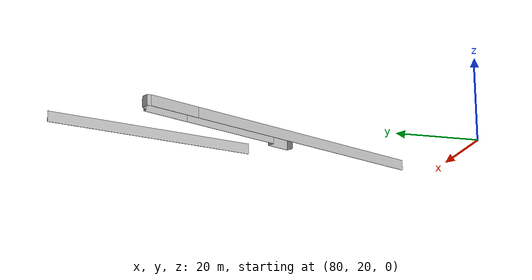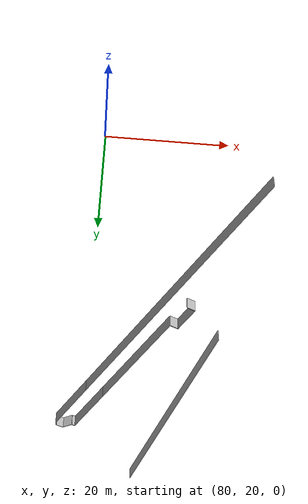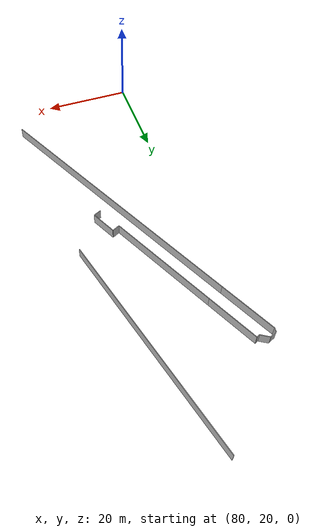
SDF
<?xml version="1.0" ?>
<sdf version="1.6">
  <model name="sps_0301">
    <pose frame="">0 0 0 0 -0 0</pose>
    <static>1</static>
    <self_collide>0</self_collide>
    <allow_auto_disable>0</allow_auto_disable>
    <link name="Wall496">
      <kinematic>0</kinematic>
      <gravity>1</gravity>
      <self_collide>0</self_collide>
      <collision name="collision">
        <geometry>
          <box>
            <size>51.7448 0.15 2.5</size>
          </box>
        </geometry>
        <pose frame="">0 0 0 0 -0 0</pose>
      </collision>
      <visual name="visual">
        <geometry>
          <box>
            <size>51.7448 0.15 2.5</size>
          </box>
        </geometry>
        <pose frame="">0 0 0 0 -0 0</pose>
        <cast_shadows>1</cast_shadows>
        <transparency>0.0</transparency>
      </visual>
      <pose frame="">98.628 92.8931 1.25 0 -0 1.83122</pose>
    </link>
    <link name="Wall1104">
      <kinematic>0</kinematic>
      <gravity>1</gravity>
      <self_collide>0</self_collide>
      <collision name="collision">
        <geometry>
          <box>
            <size>65.0491 0.15 2.5</size>
          </box>
        </geometry>
        <pose frame="">0 0 0 0 -0 0</pose>
      </collision>
      <visual name="visual">
        <geometry>
          <box>
            <size>65.0491 0.15 2.5</size>
          </box>
        </geometry>
        <pose frame="">0 0 0 0 -0 0</pose>
        <cast_shadows>1</cast_shadows>
        <transparency>0.0</transparency>
      </visual>
      <pose frame="">94.6521 57.0061 1.25 0 -0 2.0277</pose>
    </link>
    <link name="Wall1105">
      <kinematic>0</kinematic>
      <gravity>1</gravity>
      <self_collide>0</self_collide>
      <collision name="collision">
        <geometry>
          <box>
            <size>13.2672 0.15 2.5</size>
          </box>
        </geometry>
        <pose frame="">0 0 0 0 -0 0</pose>
      </collision>
      <visual name="visual">
        <geometry>
          <box>
            <size>13.2672 0.15 2.5</size>
          </box>
        </geometry>
        <pose frame="">0 0 0 0 -0 0</pose>
        <cast_shadows>1</cast_shadows>
        <transparency>0.0</transparency>
      </visual>
      <pose frame="">77.3765 92.1474 1.25 0 -0 2.02771</pose>
    </link>
    <link name="Wall1106">
      <kinematic>0</kinematic>
      <gravity>1</gravity>
      <self_collide>0</self_collide>
      <collision name="collision">
        <geometry>
          <box>
            <size>0.839965 0.15 2.5</size>
          </box>
        </geometry>
        <pose frame="">0 0 0 0 -0 0</pose>
      </collision>
      <visual name="visual">
        <geometry>
          <box>
            <size>0.839965 0.15 2.5</size>
          </box>
        </geometry>
        <pose frame="">0 0 0 0 -0 0</pose>
        <cast_shadows>1</cast_shadows>
        <transparency>0.0</transparency>
      </visual>
      <pose frame="">74.4884 98.5187 1.25 0 -0 1.47897</pose>
    </link>
    <link name="Wall1107">
      <kinematic>0</kinematic>
      <gravity>1</gravity>
      <self_collide>0</self_collide>
      <collision name="collision">
        <geometry>
          <box>
            <size>1.64574 0.15 2.5</size>
          </box>
        </geometry>
        <pose frame="">0 0 0 0 -0 0</pose>
      </collision>
      <visual name="visual">
        <geometry>
          <box>
            <size>1.64574 0.15 2.5</size>
          </box>
        </geometry>
        <pose frame="">0 0 0 0 -0 0</pose>
        <cast_shadows>1</cast_shadows>
        <transparency>0.0</transparency>
      </visual>
      <pose frame="">75.2741 99.2816 1.25 0 -0 0.432229</pose>
    </link>
    <link name="Wall1108">
      <kinematic>0</kinematic>
      <gravity>1</gravity>
      <self_collide>0</self_collide>
      <collision name="collision">
        <geometry>
          <box>
            <size>2.1578 0.15 2.5</size>
          </box>
        </geometry>
        <pose frame="">0 0 0 0 -0 0</pose>
      </collision>
      <visual name="visual">
        <geometry>
          <box>
            <size>2.1578 0.15 2.5</size>
          </box>
        </geometry>
        <pose frame="">0 0 0 0 -0 0</pose>
        <cast_shadows>1</cast_shadows>
        <transparency>0.0</transparency>
      </visual>
      <pose frame="">76.9437 99.0668 1.25 0 0 -0.545203</pose>
    </link>
    <link name="Wall1109">
      <kinematic>0</kinematic>
      <gravity>1</gravity>
      <self_collide>0</self_collide>
      <collision name="collision">
        <geometry>
          <box>
            <size>0.754935 0.15 2.5</size>
          </box>
        </geometry>
        <pose frame="">0 0 0 0 -0 0</pose>
      </collision>
      <visual name="visual">
        <geometry>
          <box>
            <size>0.754935 0.15 2.5</size>
          </box>
        </geometry>
        <pose frame="">0 0 0 0 -0 0</pose>
        <cast_shadows>1</cast_shadows>
        <transparency>0.0</transparency>
      </visual>
      <pose frame="">78.2049 98.6739 1.25 0 -0 0.457103</pose>
    </link>
    <link name="Wall1110">
      <kinematic>0</kinematic>
      <gravity>1</gravity>
      <self_collide>0</self_collide>
      <collision name="collision">
        <geometry>
          <box>
            <size>12.1258 0.15 2.5</size>
          </box>
        </geometry>
        <pose frame="">0 0 0 0 -0 0</pose>
      </collision>
      <visual name="visual">
        <geometry>
          <box>
            <size>12.1258 0.15 2.5</size>
          </box>
        </geometry>
        <pose frame="">0 0 0 0 -0 0</pose>
        <cast_shadows>1</cast_shadows>
        <transparency>0.0</transparency>
      </visual>
      <pose frame="">81.2185 93.3995 1.25 0 0 -1.11389</pose>
    </link>
    <link name="Wall1111">
      <kinematic>0</kinematic>
      <gravity>1</gravity>
      <self_collide>0</self_collide>
      <collision name="collision">
        <geometry>
          <box>
            <size>26.0573 0.15 2.5</size>
          </box>
        </geometry>
        <pose frame="">0 0 0 0 -0 0</pose>
      </collision>
      <visual name="visual">
        <geometry>
          <box>
            <size>26.0573 0.15 2.5</size>
          </box>
        </geometry>
        <pose frame="">0 0 0 0 -0 0</pose>
        <cast_shadows>1</cast_shadows>
        <transparency>0.0</transparency>
      </visual>
      <pose frame="">89.6412 76.2663 1.25 0 0 -1.11389</pose>
    </link>
    <link name="Wall1112">
      <kinematic>0</kinematic>
      <gravity>1</gravity>
      <self_collide>0</self_collide>
      <collision name="collision">
        <geometry>
          <box>
            <size>1.80007 0.15 2.5</size>
          </box>
        </geometry>
        <pose frame="">0 0 0 0 -0 0</pose>
      </collision>
      <visual name="visual">
        <geometry>
          <box>
            <size>1.80007 0.15 2.5</size>
          </box>
        </geometry>
        <pose frame="">0 0 0 0 -0 0</pose>
        <cast_shadows>1</cast_shadows>
        <transparency>0.0</transparency>
      </visual>
      <pose frame="">96.197 64.9708 1.25 0 -0 0.456445</pose>
    </link>
    <link name="Wall1113">
      <kinematic>0</kinematic>
      <gravity>1</gravity>
      <self_collide>0</self_collide>
      <collision name="collision">
        <geometry>
          <box>
            <size>5.99953 0.15 2.5</size>
          </box>
        </geometry>
        <pose frame="">0 0 0 0 -0 0</pose>
      </collision>
      <visual name="visual">
        <geometry>
          <box>
            <size>5.99953 0.15 2.5</size>
          </box>
        </geometry>
        <pose frame="">0 0 0 0 -0 0</pose>
        <cast_shadows>1</cast_shadows>
        <transparency>0.0</transparency>
      </visual>
      <pose frame="">98.3281 62.6754 1.25 0 0 -1.11393</pose>
    </link>
    <link name="Wall1114">
      <kinematic>0</kinematic>
      <gravity>1</gravity>
      <self_collide>0</self_collide>
      <collision name="collision">
        <geometry>
          <box>
            <size>1.79962 0.15 2.5</size>
          </box>
        </geometry>
        <pose frame="">0 0 0 0 -0 0</pose>
      </collision>
      <visual name="visual">
        <geometry>
          <box>
            <size>1.79962 0.15 2.5</size>
          </box>
        </geometry>
        <pose frame="">0 0 0 0 -0 0</pose>
        <cast_shadows>1</cast_shadows>
        <transparency>0.0</transparency>
      </visual>
      <pose frame="">98.844 59.5863 1.25 0 0 -2.68465</pose>
    </link>
  </model>
</sdf>
